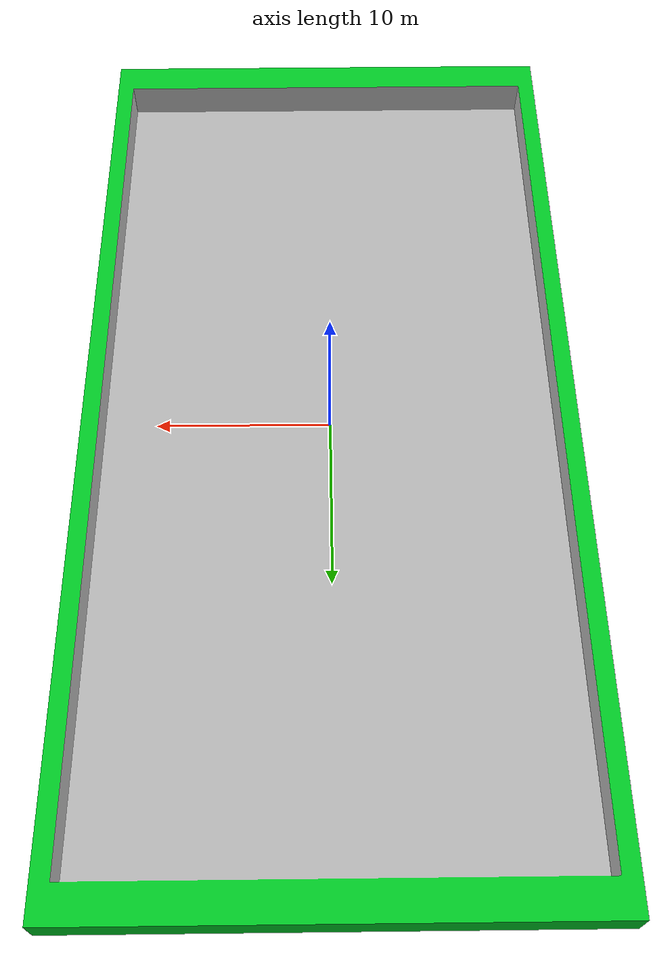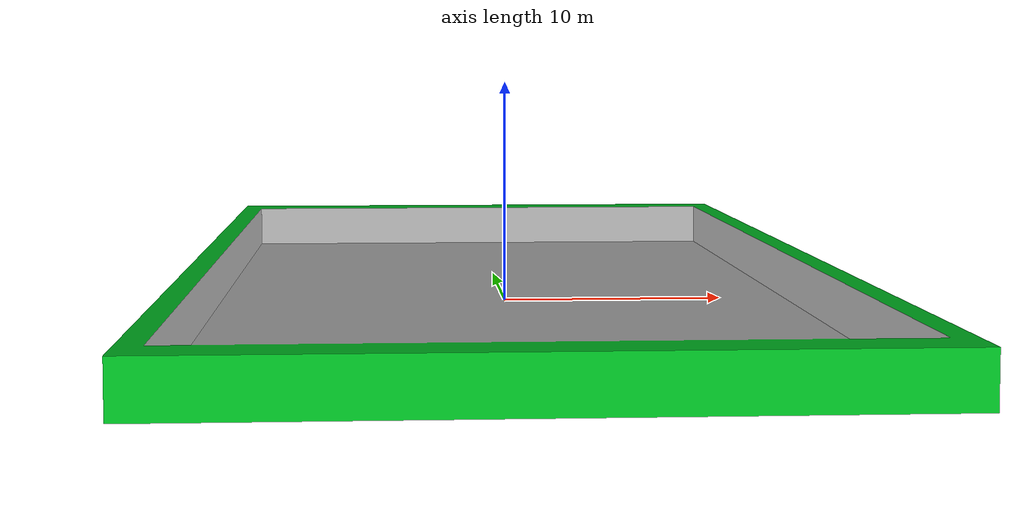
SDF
<?xml version='1.0'?>
<sdf version='1.5'>

  <model name='transdec_pool'>
    <pose>0 0 0 0 0 0</pose>
    <self_collide> 0 </self_collide>
    <static> 1</static>

    <link name='pool'>
      <pose>0 0 0 0 0 0</pose>
      <visual name='pool_visual'>
        <geometry>
            <mesh><uri>file://pool/meshes/pool.dae</uri></mesh>
        </geometry>
        <material>
          <script>
            <uri>file://media/materials/scripts/sand.material</uri>
            <name>UUVSimulator/SandAndStones</name>
          </script>
          <emissive>
            0.2 0.2 0.2 1.0
          </emissive>
        </material>
      </visual>
      <collision name='pool_collision'>
        <geometry>
            <mesh><uri>file://pool/meshes/pool.dae</uri></mesh>
        </geometry>
      </collision>
    </link>

  </model>
</sdf>
